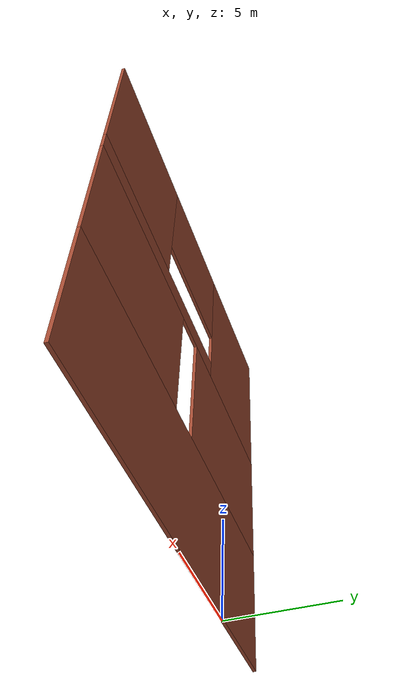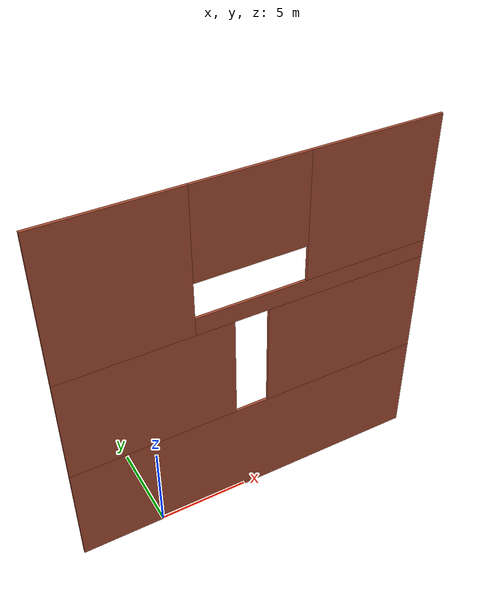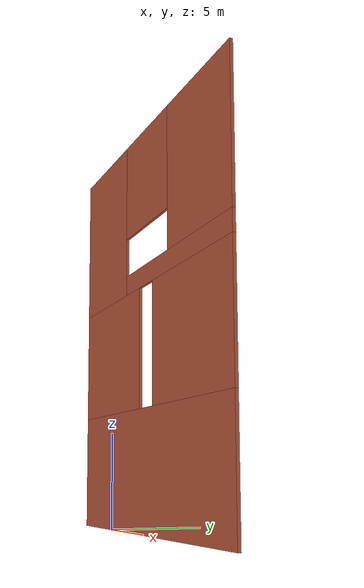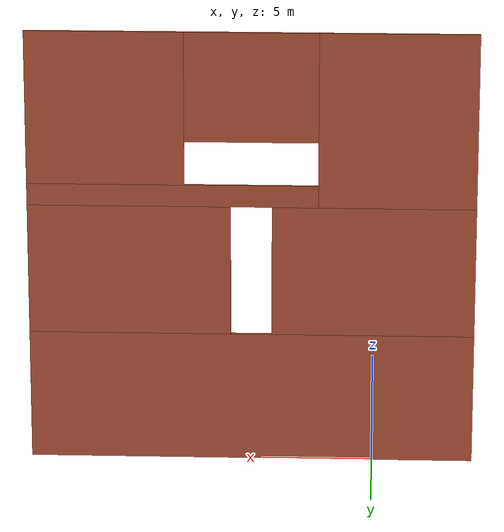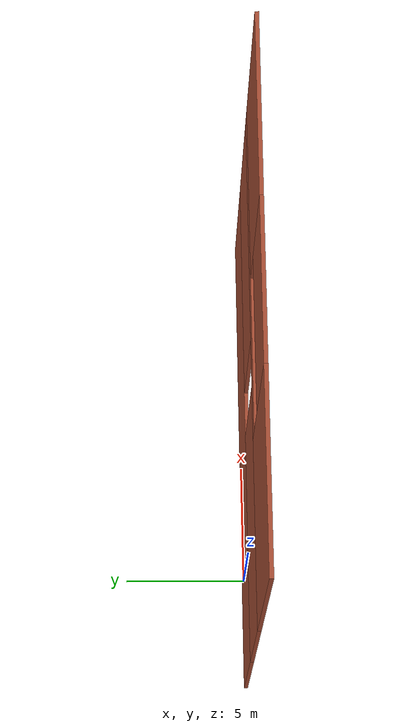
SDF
<?xml version='1.0'?>
<sdf version='1.6'>
    <model name='t_wall2'>

        <static>1</static>
        <allow_auto_disable>1</allow_auto_disable>

        <include>
            <uri>model://t_wall_6</uri>
            <name>t_wall_3_0</name>
            <pose>5.5 0 0 0 0 0</pose>
        </include>

        <include>
            <uri>model://t_wall_5</uri>
            <name>t_wall_2_1</name>
            <pose>0 0 6 0 0 0</pose>
        </include>

        <include>
            <uri>model://t_wall_5</uri>
            <name>t_wall_2_2</name>
            <pose>11 0 6 0 0 0</pose>
        </include>

        <include>
            <uri>model://t_wall_4</uri>
            <name>t_wall_1_0</name>
            <pose>5.5 0 12 0 0 0</pose>
        </include>

    </model>
</sdf>

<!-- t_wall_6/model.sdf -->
<sdf version='1.7'>
  <model name='t_wall_6'>
    <pose>10 0 0 0 -0 0</pose>
    <link name='Wall_4'>
      <collision name='Wall_4_Collision'>
        <geometry>
          <box>
            <size>20.15 0.15 6</size>
          </box>
        </geometry>
        <pose>0 0 3 0 -0 0</pose>
      </collision>
      <visual name='Wall_4_Visual'>
        <pose>0 0 3 0 -0 0</pose>
        <geometry>
          <box>
            <size>20.15 0.15 6</size>
          </box>
        </geometry>
        <material>
          <script>
            <uri>model://t_wall_6/scripts</uri>
            <name>Bricks2_6</name>
          </script>
          <ambient>1 1 1 1</ambient>
        </material>
        <meta>
          <layer>0</layer>
        </meta>
      </visual>
      <pose>-0 0 0 0 -0 0</pose>
    </link>
    <static>1</static>
  </model>
</sdf>

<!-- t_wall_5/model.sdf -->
<sdf version='1.7'>
  <model name='t_wall_5'>
    <pose>4.5 0 0 0 -0 0</pose>
    <link name='Wall_2'>
      <collision name='Wall_2_Collision'>
        <geometry>
          <box>
            <size>9.15 0.15 6</size>
          </box>
        </geometry>
        <pose>0 0 3 0 -0 0</pose>
      </collision>
      <visual name='Wall_2_Visual'>
        <pose>0 0 3 0 -0 0</pose>
        <geometry>
          <box>
            <size>9.15 0.15 6</size>
          </box>
        </geometry>
        <material>
          <script>
            <uri>model://t_wall_5/scripts</uri>
            <name>Bricks2_5</name>
          </script>
          <ambient>1 1 1 1</ambient>
        </material>
        <meta>
          <layer>0</layer>
        </meta>
      </visual>
      <pose>0 0 0 0 -0 0</pose>
    </link>
    <static>1</static>
  </model>
</sdf>

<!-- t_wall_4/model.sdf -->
<sdf version='1.7'>
  <model name='t_wall_4'>
    <pose>10 0 0 0 -0 0</pose>
    <link name='Wall_0'>
      <pose>-0 0 0 0 -0 0</pose>
      <visual name='Wall_0_Visual_0'>
        <pose>-6.5375 0 4 0 -0 0</pose>
        <geometry>
          <box>
            <size>7.075 0.15 8</size>
          </box>
        </geometry>
        <material>
          <script>
            <uri>model://t_wall_4/scripts</uri>
            <name>Bricks2</name>
          </script>
          <ambient>1 1 1 1</ambient>
        </material>
        <meta>
          <layer>0</layer>
        </meta>
      </visual>
      <collision name='Wall_0_Collision_0'>
        <geometry>
          <box>
            <size>7.075 0.15 8</size>
          </box>
        </geometry>
        <pose>-6.5375 0 4 0 -0 0</pose>
      </collision>
      <visual name='Wall_0_Visual_1'>
        <pose>3.5375 0 0.5 0 -0 0</pose>
        <geometry>
          <box>
            <size>13.075 0.15 1</size>
          </box>
        </geometry>
        <material>
          <script>
            <uri>model://t_wall_4/scripts</uri>
            <name>Bricks2_2</name>
          </script>
          <ambient>1 1 1 1</ambient>
        </material>
        <meta>
          <layer>0</layer>
        </meta>
      </visual>
      <collision name='Wall_0_Collision_1'>
        <geometry>
          <box>
            <size>13.075 0.15 1</size>
          </box>
        </geometry>
        <pose>3.5375 0 0.5 0 -0 0</pose>
      </collision>
      <visual name='Wall_0_Visual_2'>
        <pose>6.5375 0 4.5 0 -0 0</pose>
        <geometry>
          <box>
            <size>7.075 0.15 7</size>
          </box>
        </geometry>
        <material>
          <script>
            <uri>model://t_wall_4/scripts</uri>
            <name>Bricks2_3</name>
          </script>
          <ambient>1 1 1 1</ambient>
        </material>
        <meta>
          <layer>0</layer>
        </meta>
      </visual>
      <collision name='Wall_0_Collision_2'>
        <geometry>
          <box>
            <size>7.075 0.15 7</size>
          </box>
        </geometry>
        <pose>6.5375 0 4.5 0 -0 0</pose>
      </collision>
      <visual name='Wall_0_Visual_3'>
        <pose>0 0 5.5 0 -0 0</pose>
        <geometry>
          <box>
            <size>6 0.15 5</size>
          </box>
        </geometry>
        <material>
          <script>
            <uri>model://t_wall_4/scripts</uri>
            <name>Bricks2_4</name>
          </script>
          <ambient>1 1 1 1</ambient>
        </material>
        <meta>
          <layer>0</layer>
        </meta>
      </visual>
      <collision name='Wall_0_Collision_3'>
        <geometry>
          <box>
            <size>6 0.15 5</size>
          </box>
        </geometry>
        <pose>0 0 5.5 0 -0 0</pose>
      </collision>
    </link>
    <static>1</static>
  </model>
</sdf>
